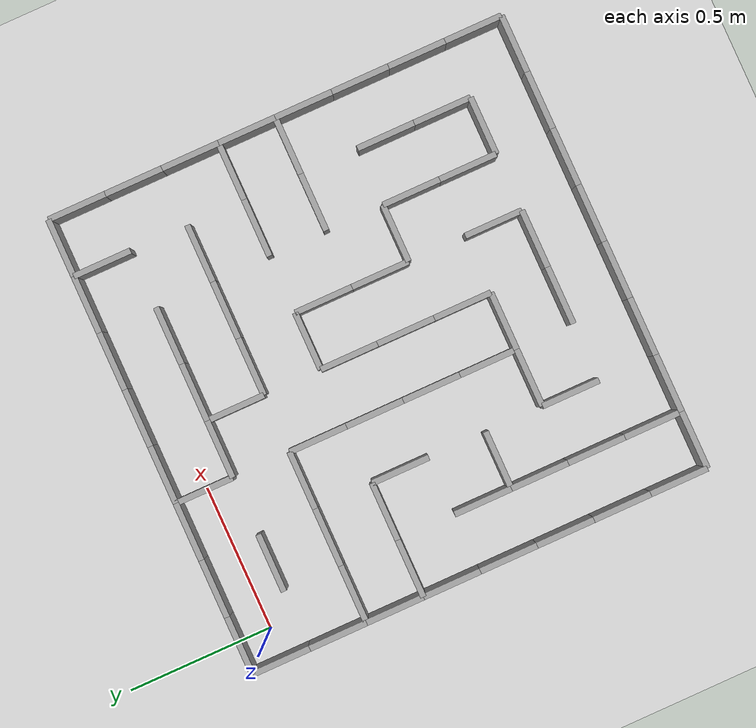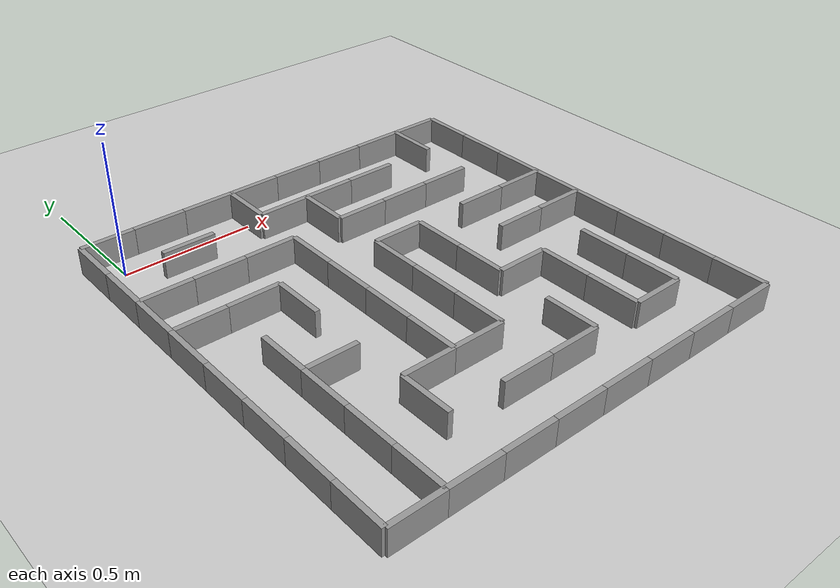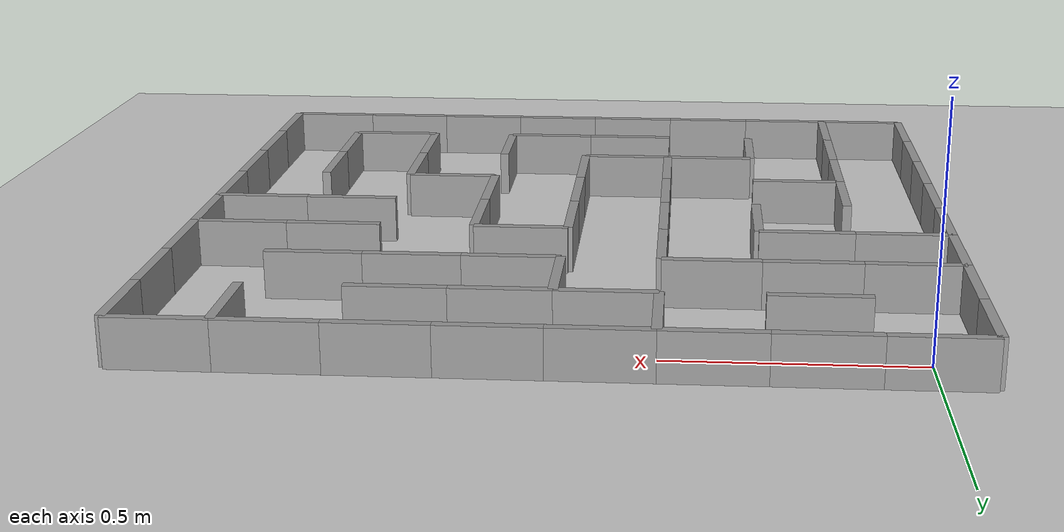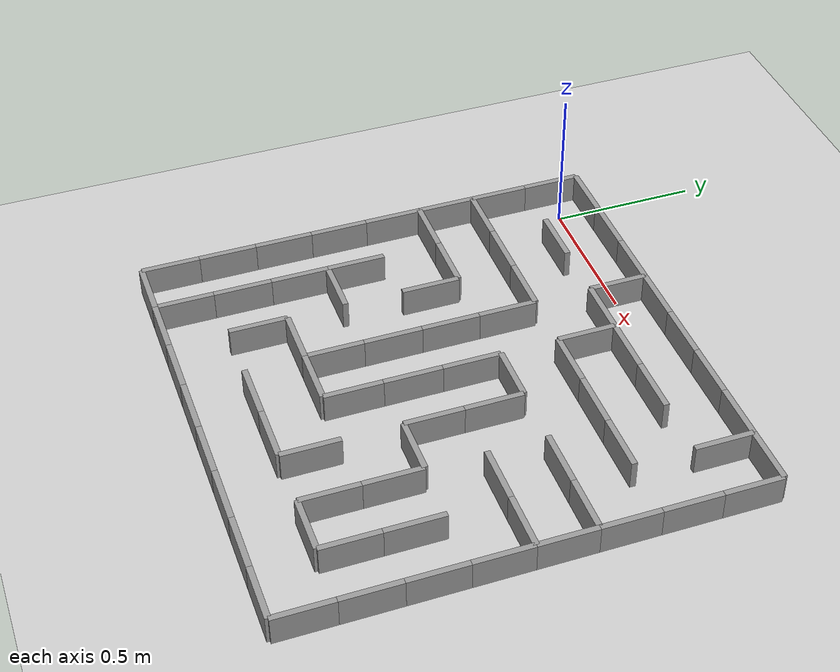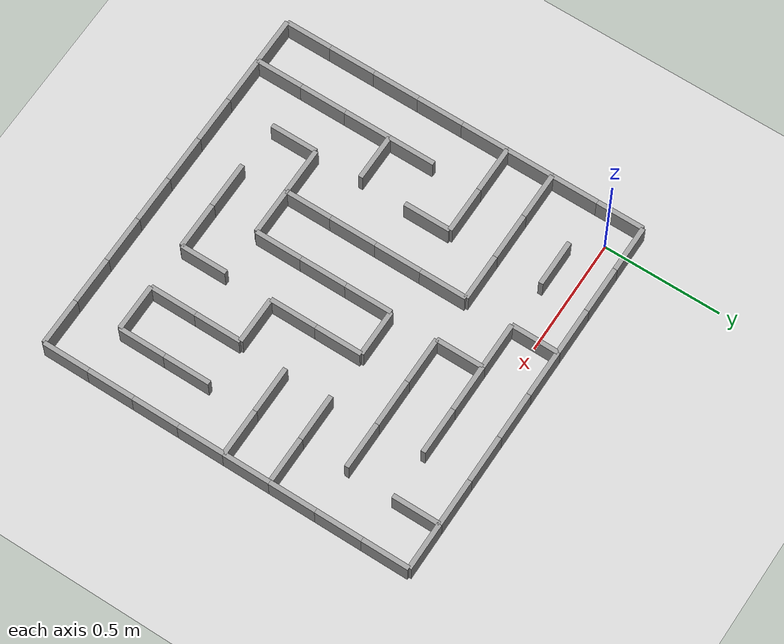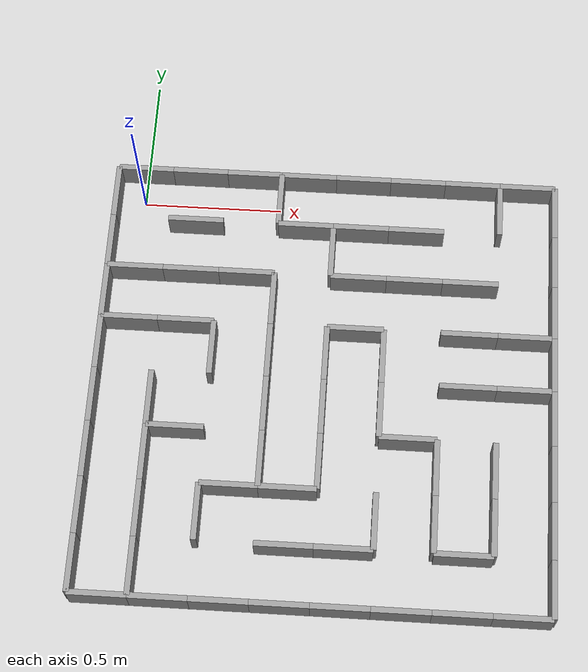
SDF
<?xml version="1.0" ?>
<sdf version="1.6">
  <world name="micromouse_world">

    <include>
      <uri>model://ground_plane</uri>
    </include>

    <model name="wall_1">
      <static>true</static>
      <pose>-0.1 0.0 0.05 0 0 0</pose>
      <link name="link">
        <collision name="collision">
          <geometry>
            <box><size>0.02 0.2 0.1</size></box>
          </geometry>
        </collision>
        <visual name="visual">
          <geometry>
            <box><size>0.02 0.2 0.1</size></box>
          </geometry>
          <material><ambient>0.6 0.6 0.6 1</ambient></material>
        </visual>
      </link>
    </model>

    <model name="wall_2">
      <static>true</static>
      <pose>0.0 0.1 0.05 0 0 0</pose>
      <link name="link">
        <collision name="collision">
          <geometry>
            <box><size>0.2 0.02 0.1</size></box>
          </geometry>
        </collision>
        <visual name="visual">
          <geometry>
            <box><size>0.2 0.02 0.1</size></box>
          </geometry>
          <material><ambient>0.6 0.6 0.6 1</ambient></material>
        </visual>
      </link>
    </model>

    <model name="wall_3">
      <static>true</static>
      <pose>0.2 0.1 0.05 0 0 0</pose>
      <link name="link">
        <collision name="collision">
          <geometry>
            <box><size>0.2 0.02 0.1</size></box>
          </geometry>
        </collision>
        <visual name="visual">
          <geometry>
            <box><size>0.2 0.02 0.1</size></box>
          </geometry>
          <material><ambient>0.6 0.6 0.6 1</ambient></material>
        </visual>
      </link>
    </model>

    <model name="wall_4">
      <static>true</static>
      <pose>0.4 0.1 0.05 0 0 0</pose>
      <link name="link">
        <collision name="collision">
          <geometry>
            <box><size>0.2 0.02 0.1</size></box>
          </geometry>
        </collision>
        <visual name="visual">
          <geometry>
            <box><size>0.2 0.02 0.1</size></box>
          </geometry>
          <material><ambient>0.6 0.6 0.6 1</ambient></material>
        </visual>
      </link>
    </model>

    <model name="wall_5">
      <static>true</static>
      <pose>0.5000000000000001 0.0 0.05 0 0 0</pose>
      <link name="link">
        <collision name="collision">
          <geometry>
            <box><size>0.02 0.2 0.1</size></box>
          </geometry>
        </collision>
        <visual name="visual">
          <geometry>
            <box><size>0.02 0.2 0.1</size></box>
          </geometry>
          <material><ambient>0.6 0.6 0.6 1</ambient></material>
        </visual>
      </link>
    </model>

    <model name="wall_6">
      <static>true</static>
      <pose>0.6000000000000001 0.1 0.05 0 0 0</pose>
      <link name="link">
        <collision name="collision">
          <geometry>
            <box><size>0.2 0.02 0.1</size></box>
          </geometry>
        </collision>
        <visual name="visual">
          <geometry>
            <box><size>0.2 0.02 0.1</size></box>
          </geometry>
          <material><ambient>0.6 0.6 0.6 1</ambient></material>
        </visual>
      </link>
    </model>

    <model name="wall_7">
      <static>true</static>
      <pose>0.8 0.1 0.05 0 0 0</pose>
      <link name="link">
        <collision name="collision">
          <geometry>
            <box><size>0.2 0.02 0.1</size></box>
          </geometry>
        </collision>
        <visual name="visual">
          <geometry>
            <box><size>0.2 0.02 0.1</size></box>
          </geometry>
          <material><ambient>0.6 0.6 0.6 1</ambient></material>
        </visual>
      </link>
    </model>

    <model name="wall_8">
      <static>true</static>
      <pose>1.0 0.1 0.05 0 0 0</pose>
      <link name="link">
        <collision name="collision">
          <geometry>
            <box><size>0.2 0.02 0.1</size></box>
          </geometry>
        </collision>
        <visual name="visual">
          <geometry>
            <box><size>0.2 0.02 0.1</size></box>
          </geometry>
          <material><ambient>0.6 0.6 0.6 1</ambient></material>
        </visual>
      </link>
    </model>

    <model name="wall_9">
      <static>true</static>
      <pose>1.2000000000000002 0.1 0.05 0 0 0</pose>
      <link name="link">
        <collision name="collision">
          <geometry>
            <box><size>0.2 0.02 0.1</size></box>
          </geometry>
        </collision>
        <visual name="visual">
          <geometry>
            <box><size>0.2 0.02 0.1</size></box>
          </geometry>
          <material><ambient>0.6 0.6 0.6 1</ambient></material>
        </visual>
      </link>
    </model>

    <model name="wall_10">
      <static>true</static>
      <pose>1.3 0.0 0.05 0 0 0</pose>
      <link name="link">
        <collision name="collision">
          <geometry>
            <box><size>0.02 0.2 0.1</size></box>
          </geometry>
        </collision>
        <visual name="visual">
          <geometry>
            <box><size>0.02 0.2 0.1</size></box>
          </geometry>
          <material><ambient>0.6 0.6 0.6 1</ambient></material>
        </visual>
      </link>
    </model>

    <model name="wall_11">
      <static>true</static>
      <pose>1.4000000000000001 0.1 0.05 0 0 0</pose>
      <link name="link">
        <collision name="collision">
          <geometry>
            <box><size>0.2 0.02 0.1</size></box>
          </geometry>
        </collision>
        <visual name="visual">
          <geometry>
            <box><size>0.2 0.02 0.1</size></box>
          </geometry>
          <material><ambient>0.6 0.6 0.6 1</ambient></material>
        </visual>
      </link>
    </model>

    <model name="wall_12">
      <static>true</static>
      <pose>-0.1 -0.2 0.05 0 0 0</pose>
      <link name="link">
        <collision name="collision">
          <geometry>
            <box><size>0.02 0.2 0.1</size></box>
          </geometry>
        </collision>
        <visual name="visual">
          <geometry>
            <box><size>0.02 0.2 0.1</size></box>
          </geometry>
          <material><ambient>0.6 0.6 0.6 1</ambient></material>
        </visual>
      </link>
    </model>

    <model name="wall_13">
      <static>true</static>
      <pose>0.2 -0.1 0.05 0 0 0</pose>
      <link name="link">
        <collision name="collision">
          <geometry>
            <box><size>0.2 0.02 0.1</size></box>
          </geometry>
        </collision>
        <visual name="visual">
          <geometry>
            <box><size>0.2 0.02 0.1</size></box>
          </geometry>
          <material><ambient>0.6 0.6 0.6 1</ambient></material>
        </visual>
      </link>
    </model>

    <model name="wall_14">
      <static>true</static>
      <pose>0.6000000000000001 -0.1 0.05 0 0 0</pose>
      <link name="link">
        <collision name="collision">
          <geometry>
            <box><size>0.2 0.02 0.1</size></box>
          </geometry>
        </collision>
        <visual name="visual">
          <geometry>
            <box><size>0.2 0.02 0.1</size></box>
          </geometry>
          <material><ambient>0.6 0.6 0.6 1</ambient></material>
        </visual>
      </link>
    </model>

    <model name="wall_15">
      <static>true</static>
      <pose>0.7000000000000001 -0.2 0.05 0 0 0</pose>
      <link name="link">
        <collision name="collision">
          <geometry>
            <box><size>0.02 0.2 0.1</size></box>
          </geometry>
        </collision>
        <visual name="visual">
          <geometry>
            <box><size>0.02 0.2 0.1</size></box>
          </geometry>
          <material><ambient>0.6 0.6 0.6 1</ambient></material>
        </visual>
      </link>
    </model>

    <model name="wall_16">
      <static>true</static>
      <pose>0.8 -0.1 0.05 0 0 0</pose>
      <link name="link">
        <collision name="collision">
          <geometry>
            <box><size>0.2 0.02 0.1</size></box>
          </geometry>
        </collision>
        <visual name="visual">
          <geometry>
            <box><size>0.2 0.02 0.1</size></box>
          </geometry>
          <material><ambient>0.6 0.6 0.6 1</ambient></material>
        </visual>
      </link>
    </model>

    <model name="wall_17">
      <static>true</static>
      <pose>1.0 -0.1 0.05 0 0 0</pose>
      <link name="link">
        <collision name="collision">
          <geometry>
            <box><size>0.2 0.02 0.1</size></box>
          </geometry>
        </collision>
        <visual name="visual">
          <geometry>
            <box><size>0.2 0.02 0.1</size></box>
          </geometry>
          <material><ambient>0.6 0.6 0.6 1</ambient></material>
        </visual>
      </link>
    </model>

    <model name="wall_18">
      <static>true</static>
      <pose>-0.1 -0.4 0.05 0 0 0</pose>
      <link name="link">
        <collision name="collision">
          <geometry>
            <box><size>0.02 0.2 0.1</size></box>
          </geometry>
        </collision>
        <visual name="visual">
          <geometry>
            <box><size>0.02 0.2 0.1</size></box>
          </geometry>
          <material><ambient>0.6 0.6 0.6 1</ambient></material>
        </visual>
      </link>
    </model>

    <model name="wall_19">
      <static>true</static>
      <pose>0.0 -0.30000000000000004 0.05 0 0 0</pose>
      <link name="link">
        <collision name="collision">
          <geometry>
            <box><size>0.2 0.02 0.1</size></box>
          </geometry>
        </collision>
        <visual name="visual">
          <geometry>
            <box><size>0.2 0.02 0.1</size></box>
          </geometry>
          <material><ambient>0.6 0.6 0.6 1</ambient></material>
        </visual>
      </link>
    </model>

    <model name="wall_20">
      <static>true</static>
      <pose>0.2 -0.30000000000000004 0.05 0 0 0</pose>
      <link name="link">
        <collision name="collision">
          <geometry>
            <box><size>0.2 0.02 0.1</size></box>
          </geometry>
        </collision>
        <visual name="visual">
          <geometry>
            <box><size>0.2 0.02 0.1</size></box>
          </geometry>
          <material><ambient>0.6 0.6 0.6 1</ambient></material>
        </visual>
      </link>
    </model>

    <model name="wall_21">
      <static>true</static>
      <pose>0.4 -0.30000000000000004 0.05 0 0 0</pose>
      <link name="link">
        <collision name="collision">
          <geometry>
            <box><size>0.2 0.02 0.1</size></box>
          </geometry>
        </collision>
        <visual name="visual">
          <geometry>
            <box><size>0.2 0.02 0.1</size></box>
          </geometry>
          <material><ambient>0.6 0.6 0.6 1</ambient></material>
        </visual>
      </link>
    </model>

    <model name="wall_22">
      <static>true</static>
      <pose>0.5000000000000001 -0.4 0.05 0 0 0</pose>
      <link name="link">
        <collision name="collision">
          <geometry>
            <box><size>0.02 0.2 0.1</size></box>
          </geometry>
        </collision>
        <visual name="visual">
          <geometry>
            <box><size>0.02 0.2 0.1</size></box>
          </geometry>
          <material><ambient>0.6 0.6 0.6 1</ambient></material>
        </visual>
      </link>
    </model>

    <model name="wall_23">
      <static>true</static>
      <pose>0.8 -0.30000000000000004 0.05 0 0 0</pose>
      <link name="link">
        <collision name="collision">
          <geometry>
            <box><size>0.2 0.02 0.1</size></box>
          </geometry>
        </collision>
        <visual name="visual">
          <geometry>
            <box><size>0.2 0.02 0.1</size></box>
          </geometry>
          <material><ambient>0.6 0.6 0.6 1</ambient></material>
        </visual>
      </link>
    </model>

    <model name="wall_24">
      <static>true</static>
      <pose>1.0 -0.30000000000000004 0.05 0 0 0</pose>
      <link name="link">
        <collision name="collision">
          <geometry>
            <box><size>0.2 0.02 0.1</size></box>
          </geometry>
        </collision>
        <visual name="visual">
          <geometry>
            <box><size>0.2 0.02 0.1</size></box>
          </geometry>
          <material><ambient>0.6 0.6 0.6 1</ambient></material>
        </visual>
      </link>
    </model>

    <model name="wall_25">
      <static>true</static>
      <pose>1.2000000000000002 -0.30000000000000004 0.05 0 0 0</pose>
      <link name="link">
        <collision name="collision">
          <geometry>
            <box><size>0.2 0.02 0.1</size></box>
          </geometry>
        </collision>
        <visual name="visual">
          <geometry>
            <box><size>0.2 0.02 0.1</size></box>
          </geometry>
          <material><ambient>0.6 0.6 0.6 1</ambient></material>
        </visual>
      </link>
    </model>

    <model name="wall_26">
      <static>true</static>
      <pose>-0.1 -0.6000000000000001 0.05 0 0 0</pose>
      <link name="link">
        <collision name="collision">
          <geometry>
            <box><size>0.02 0.2 0.1</size></box>
          </geometry>
        </collision>
        <visual name="visual">
          <geometry>
            <box><size>0.02 0.2 0.1</size></box>
          </geometry>
          <material><ambient>0.6 0.6 0.6 1</ambient></material>
        </visual>
      </link>
    </model>

    <model name="wall_27">
      <static>true</static>
      <pose>0.0 -0.5000000000000001 0.05 0 0 0</pose>
      <link name="link">
        <collision name="collision">
          <geometry>
            <box><size>0.2 0.02 0.1</size></box>
          </geometry>
        </collision>
        <visual name="visual">
          <geometry>
            <box><size>0.2 0.02 0.1</size></box>
          </geometry>
          <material><ambient>0.6 0.6 0.6 1</ambient></material>
        </visual>
      </link>
    </model>

    <model name="wall_28">
      <static>true</static>
      <pose>0.2 -0.5000000000000001 0.05 0 0 0</pose>
      <link name="link">
        <collision name="collision">
          <geometry>
            <box><size>0.2 0.02 0.1</size></box>
          </geometry>
        </collision>
        <visual name="visual">
          <geometry>
            <box><size>0.2 0.02 0.1</size></box>
          </geometry>
          <material><ambient>0.6 0.6 0.6 1</ambient></material>
        </visual>
      </link>
    </model>

    <model name="wall_29">
      <static>true</static>
      <pose>0.30000000000000004 -0.6000000000000001 0.05 0 0 0</pose>
      <link name="link">
        <collision name="collision">
          <geometry>
            <box><size>0.02 0.2 0.1</size></box>
          </geometry>
        </collision>
        <visual name="visual">
          <geometry>
            <box><size>0.02 0.2 0.1</size></box>
          </geometry>
          <material><ambient>0.6 0.6 0.6 1</ambient></material>
        </visual>
      </link>
    </model>

    <model name="wall_30">
      <static>true</static>
      <pose>0.5000000000000001 -0.6000000000000001 0.05 0 0 0</pose>
      <link name="link">
        <collision name="collision">
          <geometry>
            <box><size>0.02 0.2 0.1</size></box>
          </geometry>
        </collision>
        <visual name="visual">
          <geometry>
            <box><size>0.02 0.2 0.1</size></box>
          </geometry>
          <material><ambient>0.6 0.6 0.6 1</ambient></material>
        </visual>
      </link>
    </model>

    <model name="wall_31">
      <static>true</static>
      <pose>0.7000000000000001 -0.6000000000000001 0.05 0 0 0</pose>
      <link name="link">
        <collision name="collision">
          <geometry>
            <box><size>0.02 0.2 0.1</size></box>
          </geometry>
        </collision>
        <visual name="visual">
          <geometry>
            <box><size>0.02 0.2 0.1</size></box>
          </geometry>
          <material><ambient>0.6 0.6 0.6 1</ambient></material>
        </visual>
      </link>
    </model>

    <model name="wall_32">
      <static>true</static>
      <pose>0.8 -0.5000000000000001 0.05 0 0 0</pose>
      <link name="link">
        <collision name="collision">
          <geometry>
            <box><size>0.2 0.02 0.1</size></box>
          </geometry>
        </collision>
        <visual name="visual">
          <geometry>
            <box><size>0.2 0.02 0.1</size></box>
          </geometry>
          <material><ambient>0.6 0.6 0.6 1</ambient></material>
        </visual>
      </link>
    </model>

    <model name="wall_33">
      <static>true</static>
      <pose>0.9 -0.6000000000000001 0.05 0 0 0</pose>
      <link name="link">
        <collision name="collision">
          <geometry>
            <box><size>0.02 0.2 0.1</size></box>
          </geometry>
        </collision>
        <visual name="visual">
          <geometry>
            <box><size>0.02 0.2 0.1</size></box>
          </geometry>
          <material><ambient>0.6 0.6 0.6 1</ambient></material>
        </visual>
      </link>
    </model>

    <model name="wall_34">
      <static>true</static>
      <pose>1.2000000000000002 -0.5000000000000001 0.05 0 0 0</pose>
      <link name="link">
        <collision name="collision">
          <geometry>
            <box><size>0.2 0.02 0.1</size></box>
          </geometry>
        </collision>
        <visual name="visual">
          <geometry>
            <box><size>0.2 0.02 0.1</size></box>
          </geometry>
          <material><ambient>0.6 0.6 0.6 1</ambient></material>
        </visual>
      </link>
    </model>

    <model name="wall_35">
      <static>true</static>
      <pose>1.4000000000000001 -0.5000000000000001 0.05 0 0 0</pose>
      <link name="link">
        <collision name="collision">
          <geometry>
            <box><size>0.2 0.02 0.1</size></box>
          </geometry>
        </collision>
        <visual name="visual">
          <geometry>
            <box><size>0.2 0.02 0.1</size></box>
          </geometry>
          <material><ambient>0.6 0.6 0.6 1</ambient></material>
        </visual>
      </link>
    </model>

    <model name="wall_36">
      <static>true</static>
      <pose>-0.1 -0.8 0.05 0 0 0</pose>
      <link name="link">
        <collision name="collision">
          <geometry>
            <box><size>0.02 0.2 0.1</size></box>
          </geometry>
        </collision>
        <visual name="visual">
          <geometry>
            <box><size>0.02 0.2 0.1</size></box>
          </geometry>
          <material><ambient>0.6 0.6 0.6 1</ambient></material>
        </visual>
      </link>
    </model>

    <model name="wall_37">
      <static>true</static>
      <pose>0.1 -0.8 0.05 0 0 0</pose>
      <link name="link">
        <collision name="collision">
          <geometry>
            <box><size>0.02 0.2 0.1</size></box>
          </geometry>
        </collision>
        <visual name="visual">
          <geometry>
            <box><size>0.02 0.2 0.1</size></box>
          </geometry>
          <material><ambient>0.6 0.6 0.6 1</ambient></material>
        </visual>
      </link>
    </model>

    <model name="wall_38">
      <static>true</static>
      <pose>0.5000000000000001 -0.8 0.05 0 0 0</pose>
      <link name="link">
        <collision name="collision">
          <geometry>
            <box><size>0.02 0.2 0.1</size></box>
          </geometry>
        </collision>
        <visual name="visual">
          <geometry>
            <box><size>0.02 0.2 0.1</size></box>
          </geometry>
          <material><ambient>0.6 0.6 0.6 1</ambient></material>
        </visual>
      </link>
    </model>

    <model name="wall_39">
      <static>true</static>
      <pose>0.7000000000000001 -0.8 0.05 0 0 0</pose>
      <link name="link">
        <collision name="collision">
          <geometry>
            <box><size>0.02 0.2 0.1</size></box>
          </geometry>
        </collision>
        <visual name="visual">
          <geometry>
            <box><size>0.02 0.2 0.1</size></box>
          </geometry>
          <material><ambient>0.6 0.6 0.6 1</ambient></material>
        </visual>
      </link>
    </model>

    <model name="wall_40">
      <static>true</static>
      <pose>0.9 -0.8 0.05 0 0 0</pose>
      <link name="link">
        <collision name="collision">
          <geometry>
            <box><size>0.02 0.2 0.1</size></box>
          </geometry>
        </collision>
        <visual name="visual">
          <geometry>
            <box><size>0.02 0.2 0.1</size></box>
          </geometry>
          <material><ambient>0.6 0.6 0.6 1</ambient></material>
        </visual>
      </link>
    </model>

    <model name="wall_41">
      <static>true</static>
      <pose>1.2000000000000002 -0.7000000000000001 0.05 0 0 0</pose>
      <link name="link">
        <collision name="collision">
          <geometry>
            <box><size>0.2 0.02 0.1</size></box>
          </geometry>
        </collision>
        <visual name="visual">
          <geometry>
            <box><size>0.2 0.02 0.1</size></box>
          </geometry>
          <material><ambient>0.6 0.6 0.6 1</ambient></material>
        </visual>
      </link>
    </model>

    <model name="wall_42">
      <static>true</static>
      <pose>1.4000000000000001 -0.7000000000000001 0.05 0 0 0</pose>
      <link name="link">
        <collision name="collision">
          <geometry>
            <box><size>0.2 0.02 0.1</size></box>
          </geometry>
        </collision>
        <visual name="visual">
          <geometry>
            <box><size>0.2 0.02 0.1</size></box>
          </geometry>
          <material><ambient>0.6 0.6 0.6 1</ambient></material>
        </visual>
      </link>
    </model>

    <model name="wall_43">
      <static>true</static>
      <pose>-0.1 -1.0 0.05 0 0 0</pose>
      <link name="link">
        <collision name="collision">
          <geometry>
            <box><size>0.02 0.2 0.1</size></box>
          </geometry>
        </collision>
        <visual name="visual">
          <geometry>
            <box><size>0.02 0.2 0.1</size></box>
          </geometry>
          <material><ambient>0.6 0.6 0.6 1</ambient></material>
        </visual>
      </link>
    </model>

    <model name="wall_44">
      <static>true</static>
      <pose>0.1 -1.0 0.05 0 0 0</pose>
      <link name="link">
        <collision name="collision">
          <geometry>
            <box><size>0.02 0.2 0.1</size></box>
          </geometry>
        </collision>
        <visual name="visual">
          <geometry>
            <box><size>0.02 0.2 0.1</size></box>
          </geometry>
          <material><ambient>0.6 0.6 0.6 1</ambient></material>
        </visual>
      </link>
    </model>

    <model name="wall_45">
      <static>true</static>
      <pose>0.2 -0.9 0.05 0 0 0</pose>
      <link name="link">
        <collision name="collision">
          <geometry>
            <box><size>0.2 0.02 0.1</size></box>
          </geometry>
        </collision>
        <visual name="visual">
          <geometry>
            <box><size>0.2 0.02 0.1</size></box>
          </geometry>
          <material><ambient>0.6 0.6 0.6 1</ambient></material>
        </visual>
      </link>
    </model>

    <model name="wall_46">
      <static>true</static>
      <pose>0.5000000000000001 -1.0 0.05 0 0 0</pose>
      <link name="link">
        <collision name="collision">
          <geometry>
            <box><size>0.02 0.2 0.1</size></box>
          </geometry>
        </collision>
        <visual name="visual">
          <geometry>
            <box><size>0.02 0.2 0.1</size></box>
          </geometry>
          <material><ambient>0.6 0.6 0.6 1</ambient></material>
        </visual>
      </link>
    </model>

    <model name="wall_47">
      <static>true</static>
      <pose>0.7000000000000001 -1.0 0.05 0 0 0</pose>
      <link name="link">
        <collision name="collision">
          <geometry>
            <box><size>0.02 0.2 0.1</size></box>
          </geometry>
        </collision>
        <visual name="visual">
          <geometry>
            <box><size>0.02 0.2 0.1</size></box>
          </geometry>
          <material><ambient>0.6 0.6 0.6 1</ambient></material>
        </visual>
      </link>
    </model>

    <model name="wall_48">
      <static>true</static>
      <pose>1.0 -0.9 0.05 0 0 0</pose>
      <link name="link">
        <collision name="collision">
          <geometry>
            <box><size>0.2 0.02 0.1</size></box>
          </geometry>
        </collision>
        <visual name="visual">
          <geometry>
            <box><size>0.2 0.02 0.1</size></box>
          </geometry>
          <material><ambient>0.6 0.6 0.6 1</ambient></material>
        </visual>
      </link>
    </model>

    <model name="wall_49">
      <static>true</static>
      <pose>1.1 -1.0 0.05 0 0 0</pose>
      <link name="link">
        <collision name="collision">
          <geometry>
            <box><size>0.02 0.2 0.1</size></box>
          </geometry>
        </collision>
        <visual name="visual">
          <geometry>
            <box><size>0.02 0.2 0.1</size></box>
          </geometry>
          <material><ambient>0.6 0.6 0.6 1</ambient></material>
        </visual>
      </link>
    </model>

    <model name="wall_50">
      <static>true</static>
      <pose>1.3 -1.0 0.05 0 0 0</pose>
      <link name="link">
        <collision name="collision">
          <geometry>
            <box><size>0.02 0.2 0.1</size></box>
          </geometry>
        </collision>
        <visual name="visual">
          <geometry>
            <box><size>0.02 0.2 0.1</size></box>
          </geometry>
          <material><ambient>0.6 0.6 0.6 1</ambient></material>
        </visual>
      </link>
    </model>

    <model name="wall_51">
      <static>true</static>
      <pose>-0.1 -1.2000000000000002 0.05 0 0 0</pose>
      <link name="link">
        <collision name="collision">
          <geometry>
            <box><size>0.02 0.2 0.1</size></box>
          </geometry>
        </collision>
        <visual name="visual">
          <geometry>
            <box><size>0.02 0.2 0.1</size></box>
          </geometry>
          <material><ambient>0.6 0.6 0.6 1</ambient></material>
        </visual>
      </link>
    </model>

    <model name="wall_52">
      <static>true</static>
      <pose>0.1 -1.2000000000000002 0.05 0 0 0</pose>
      <link name="link">
        <collision name="collision">
          <geometry>
            <box><size>0.02 0.2 0.1</size></box>
          </geometry>
        </collision>
        <visual name="visual">
          <geometry>
            <box><size>0.02 0.2 0.1</size></box>
          </geometry>
          <material><ambient>0.6 0.6 0.6 1</ambient></material>
        </visual>
      </link>
    </model>

    <model name="wall_53">
      <static>true</static>
      <pose>0.30000000000000004 -1.2000000000000002 0.05 0 0 0</pose>
      <link name="link">
        <collision name="collision">
          <geometry>
            <box><size>0.02 0.2 0.1</size></box>
          </geometry>
        </collision>
        <visual name="visual">
          <geometry>
            <box><size>0.02 0.2 0.1</size></box>
          </geometry>
          <material><ambient>0.6 0.6 0.6 1</ambient></material>
        </visual>
      </link>
    </model>

    <model name="wall_54">
      <static>true</static>
      <pose>0.4 -1.1 0.05 0 0 0</pose>
      <link name="link">
        <collision name="collision">
          <geometry>
            <box><size>0.2 0.02 0.1</size></box>
          </geometry>
        </collision>
        <visual name="visual">
          <geometry>
            <box><size>0.2 0.02 0.1</size></box>
          </geometry>
          <material><ambient>0.6 0.6 0.6 1</ambient></material>
        </visual>
      </link>
    </model>

    <model name="wall_55">
      <static>true</static>
      <pose>0.6000000000000001 -1.1 0.05 0 0 0</pose>
      <link name="link">
        <collision name="collision">
          <geometry>
            <box><size>0.2 0.02 0.1</size></box>
          </geometry>
        </collision>
        <visual name="visual">
          <geometry>
            <box><size>0.2 0.02 0.1</size></box>
          </geometry>
          <material><ambient>0.6 0.6 0.6 1</ambient></material>
        </visual>
      </link>
    </model>

    <model name="wall_56">
      <static>true</static>
      <pose>0.9 -1.2000000000000002 0.05 0 0 0</pose>
      <link name="link">
        <collision name="collision">
          <geometry>
            <box><size>0.02 0.2 0.1</size></box>
          </geometry>
        </collision>
        <visual name="visual">
          <geometry>
            <box><size>0.02 0.2 0.1</size></box>
          </geometry>
          <material><ambient>0.6 0.6 0.6 1</ambient></material>
        </visual>
      </link>
    </model>

    <model name="wall_57">
      <static>true</static>
      <pose>1.1 -1.2000000000000002 0.05 0 0 0</pose>
      <link name="link">
        <collision name="collision">
          <geometry>
            <box><size>0.02 0.2 0.1</size></box>
          </geometry>
        </collision>
        <visual name="visual">
          <geometry>
            <box><size>0.02 0.2 0.1</size></box>
          </geometry>
          <material><ambient>0.6 0.6 0.6 1</ambient></material>
        </visual>
      </link>
    </model>

    <model name="wall_58">
      <static>true</static>
      <pose>1.3 -1.2000000000000002 0.05 0 0 0</pose>
      <link name="link">
        <collision name="collision">
          <geometry>
            <box><size>0.02 0.2 0.1</size></box>
          </geometry>
        </collision>
        <visual name="visual">
          <geometry>
            <box><size>0.02 0.2 0.1</size></box>
          </geometry>
          <material><ambient>0.6 0.6 0.6 1</ambient></material>
        </visual>
      </link>
    </model>

    <model name="wall_59">
      <static>true</static>
      <pose>-0.1 -1.4000000000000001 0.05 0 0 0</pose>
      <link name="link">
        <collision name="collision">
          <geometry>
            <box><size>0.02 0.2 0.1</size></box>
          </geometry>
        </collision>
        <visual name="visual">
          <geometry>
            <box><size>0.02 0.2 0.1</size></box>
          </geometry>
          <material><ambient>0.6 0.6 0.6 1</ambient></material>
        </visual>
      </link>
    </model>

    <model name="wall_60">
      <static>true</static>
      <pose>0.1 -1.4000000000000001 0.05 0 0 0</pose>
      <link name="link">
        <collision name="collision">
          <geometry>
            <box><size>0.02 0.2 0.1</size></box>
          </geometry>
        </collision>
        <visual name="visual">
          <geometry>
            <box><size>0.02 0.2 0.1</size></box>
          </geometry>
          <material><ambient>0.6 0.6 0.6 1</ambient></material>
        </visual>
      </link>
    </model>

    <model name="wall_61">
      <static>true</static>
      <pose>0.6000000000000001 -1.3 0.05 0 0 0</pose>
      <link name="link">
        <collision name="collision">
          <geometry>
            <box><size>0.2 0.02 0.1</size></box>
          </geometry>
        </collision>
        <visual name="visual">
          <geometry>
            <box><size>0.2 0.02 0.1</size></box>
          </geometry>
          <material><ambient>0.6 0.6 0.6 1</ambient></material>
        </visual>
      </link>
    </model>

    <model name="wall_62">
      <static>true</static>
      <pose>0.8 -1.3 0.05 0 0 0</pose>
      <link name="link">
        <collision name="collision">
          <geometry>
            <box><size>0.2 0.02 0.1</size></box>
          </geometry>
        </collision>
        <visual name="visual">
          <geometry>
            <box><size>0.2 0.02 0.1</size></box>
          </geometry>
          <material><ambient>0.6 0.6 0.6 1</ambient></material>
        </visual>
      </link>
    </model>

    <model name="wall_63">
      <static>true</static>
      <pose>1.2000000000000002 -1.3 0.05 0 0 0</pose>
      <link name="link">
        <collision name="collision">
          <geometry>
            <box><size>0.2 0.02 0.1</size></box>
          </geometry>
        </collision>
        <visual name="visual">
          <geometry>
            <box><size>0.2 0.02 0.1</size></box>
          </geometry>
          <material><ambient>0.6 0.6 0.6 1</ambient></material>
        </visual>
      </link>
    </model>

    <model name="wall_64">
      <static>true</static>
      <pose>1.5 0.0 0.05 0 0 0</pose>
      <link name="link">
        <collision name="collision">
          <geometry>
            <box><size>0.02 0.2 0.1</size></box>
          </geometry>
        </collision>
        <visual name="visual">
          <geometry>
            <box><size>0.02 0.2 0.1</size></box>
          </geometry>
          <material><ambient>0.6 0.6 0.6 1</ambient></material>
        </visual>
      </link>
    </model>

    <model name="wall_65">
      <static>true</static>
      <pose>1.5 -0.2 0.05 0 0 0</pose>
      <link name="link">
        <collision name="collision">
          <geometry>
            <box><size>0.02 0.2 0.1</size></box>
          </geometry>
        </collision>
        <visual name="visual">
          <geometry>
            <box><size>0.02 0.2 0.1</size></box>
          </geometry>
          <material><ambient>0.6 0.6 0.6 1</ambient></material>
        </visual>
      </link>
    </model>

    <model name="wall_66">
      <static>true</static>
      <pose>1.5 -0.4 0.05 0 0 0</pose>
      <link name="link">
        <collision name="collision">
          <geometry>
            <box><size>0.02 0.2 0.1</size></box>
          </geometry>
        </collision>
        <visual name="visual">
          <geometry>
            <box><size>0.02 0.2 0.1</size></box>
          </geometry>
          <material><ambient>0.6 0.6 0.6 1</ambient></material>
        </visual>
      </link>
    </model>

    <model name="wall_67">
      <static>true</static>
      <pose>1.5 -0.6000000000000001 0.05 0 0 0</pose>
      <link name="link">
        <collision name="collision">
          <geometry>
            <box><size>0.02 0.2 0.1</size></box>
          </geometry>
        </collision>
        <visual name="visual">
          <geometry>
            <box><size>0.02 0.2 0.1</size></box>
          </geometry>
          <material><ambient>0.6 0.6 0.6 1</ambient></material>
        </visual>
      </link>
    </model>

    <model name="wall_68">
      <static>true</static>
      <pose>1.5 -0.8 0.05 0 0 0</pose>
      <link name="link">
        <collision name="collision">
          <geometry>
            <box><size>0.02 0.2 0.1</size></box>
          </geometry>
        </collision>
        <visual name="visual">
          <geometry>
            <box><size>0.02 0.2 0.1</size></box>
          </geometry>
          <material><ambient>0.6 0.6 0.6 1</ambient></material>
        </visual>
      </link>
    </model>

    <model name="wall_69">
      <static>true</static>
      <pose>1.5 -1.0 0.05 0 0 0</pose>
      <link name="link">
        <collision name="collision">
          <geometry>
            <box><size>0.02 0.2 0.1</size></box>
          </geometry>
        </collision>
        <visual name="visual">
          <geometry>
            <box><size>0.02 0.2 0.1</size></box>
          </geometry>
          <material><ambient>0.6 0.6 0.6 1</ambient></material>
        </visual>
      </link>
    </model>

    <model name="wall_70">
      <static>true</static>
      <pose>1.5 -1.2000000000000002 0.05 0 0 0</pose>
      <link name="link">
        <collision name="collision">
          <geometry>
            <box><size>0.02 0.2 0.1</size></box>
          </geometry>
        </collision>
        <visual name="visual">
          <geometry>
            <box><size>0.02 0.2 0.1</size></box>
          </geometry>
          <material><ambient>0.6 0.6 0.6 1</ambient></material>
        </visual>
      </link>
    </model>

    <model name="wall_71">
      <static>true</static>
      <pose>1.5 -1.4000000000000001 0.05 0 0 0</pose>
      <link name="link">
        <collision name="collision">
          <geometry>
            <box><size>0.02 0.2 0.1</size></box>
          </geometry>
        </collision>
        <visual name="visual">
          <geometry>
            <box><size>0.02 0.2 0.1</size></box>
          </geometry>
          <material><ambient>0.6 0.6 0.6 1</ambient></material>
        </visual>
      </link>
    </model>

    <model name="wall_72">
      <static>true</static>
      <pose>0.0 -1.5 0.05 0 0 0</pose>
      <link name="link">
        <collision name="collision">
          <geometry>
            <box><size>0.2 0.02 0.1</size></box>
          </geometry>
        </collision>
        <visual name="visual">
          <geometry>
            <box><size>0.2 0.02 0.1</size></box>
          </geometry>
          <material><ambient>0.6 0.6 0.6 1</ambient></material>
        </visual>
      </link>
    </model>

    <model name="wall_73">
      <static>true</static>
      <pose>0.2 -1.5 0.05 0 0 0</pose>
      <link name="link">
        <collision name="collision">
          <geometry>
            <box><size>0.2 0.02 0.1</size></box>
          </geometry>
        </collision>
        <visual name="visual">
          <geometry>
            <box><size>0.2 0.02 0.1</size></box>
          </geometry>
          <material><ambient>0.6 0.6 0.6 1</ambient></material>
        </visual>
      </link>
    </model>

    <model name="wall_74">
      <static>true</static>
      <pose>0.4 -1.5 0.05 0 0 0</pose>
      <link name="link">
        <collision name="collision">
          <geometry>
            <box><size>0.2 0.02 0.1</size></box>
          </geometry>
        </collision>
        <visual name="visual">
          <geometry>
            <box><size>0.2 0.02 0.1</size></box>
          </geometry>
          <material><ambient>0.6 0.6 0.6 1</ambient></material>
        </visual>
      </link>
    </model>

    <model name="wall_75">
      <static>true</static>
      <pose>0.6000000000000001 -1.5 0.05 0 0 0</pose>
      <link name="link">
        <collision name="collision">
          <geometry>
            <box><size>0.2 0.02 0.1</size></box>
          </geometry>
        </collision>
        <visual name="visual">
          <geometry>
            <box><size>0.2 0.02 0.1</size></box>
          </geometry>
          <material><ambient>0.6 0.6 0.6 1</ambient></material>
        </visual>
      </link>
    </model>

    <model name="wall_76">
      <static>true</static>
      <pose>0.8 -1.5 0.05 0 0 0</pose>
      <link name="link">
        <collision name="collision">
          <geometry>
            <box><size>0.2 0.02 0.1</size></box>
          </geometry>
        </collision>
        <visual name="visual">
          <geometry>
            <box><size>0.2 0.02 0.1</size></box>
          </geometry>
          <material><ambient>0.6 0.6 0.6 1</ambient></material>
        </visual>
      </link>
    </model>

    <model name="wall_77">
      <static>true</static>
      <pose>1.0 -1.5 0.05 0 0 0</pose>
      <link name="link">
        <collision name="collision">
          <geometry>
            <box><size>0.2 0.02 0.1</size></box>
          </geometry>
        </collision>
        <visual name="visual">
          <geometry>
            <box><size>0.2 0.02 0.1</size></box>
          </geometry>
          <material><ambient>0.6 0.6 0.6 1</ambient></material>
        </visual>
      </link>
    </model>

    <model name="wall_78">
      <static>true</static>
      <pose>1.2000000000000002 -1.5 0.05 0 0 0</pose>
      <link name="link">
        <collision name="collision">
          <geometry>
            <box><size>0.2 0.02 0.1</size></box>
          </geometry>
        </collision>
        <visual name="visual">
          <geometry>
            <box><size>0.2 0.02 0.1</size></box>
          </geometry>
          <material><ambient>0.6 0.6 0.6 1</ambient></material>
        </visual>
      </link>
    </model>

    <model name="wall_79">
      <static>true</static>
      <pose>1.4000000000000001 -1.5 0.05 0 0 0</pose>
      <link name="link">
        <collision name="collision">
          <geometry>
            <box><size>0.2 0.02 0.1</size></box>
          </geometry>
        </collision>
        <visual name="visual">
          <geometry>
            <box><size>0.2 0.02 0.1</size></box>
          </geometry>
          <material><ambient>0.6 0.6 0.6 1</ambient></material>
        </visual>
      </link>
    </model>

  </world>
</sdf>
